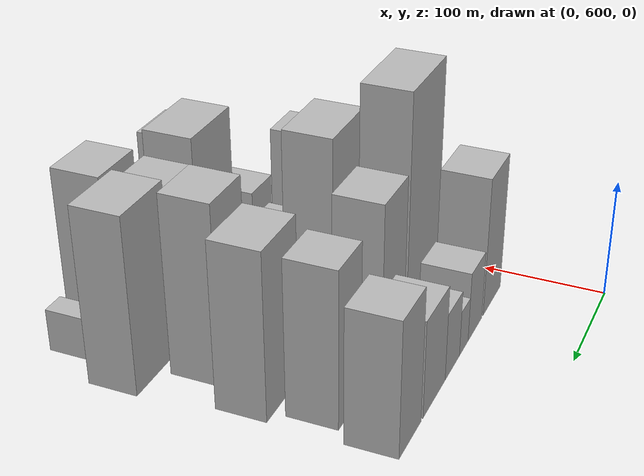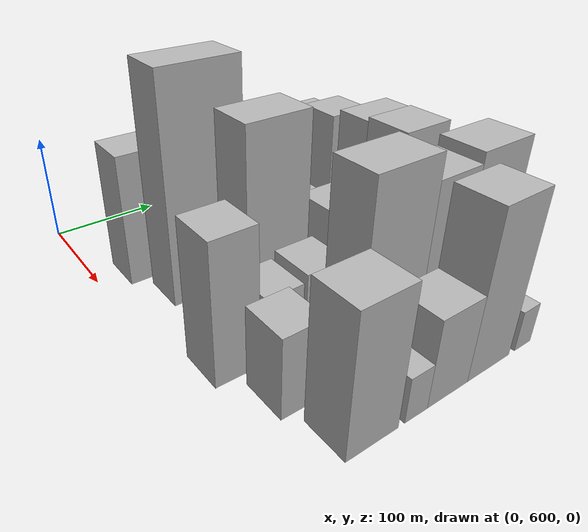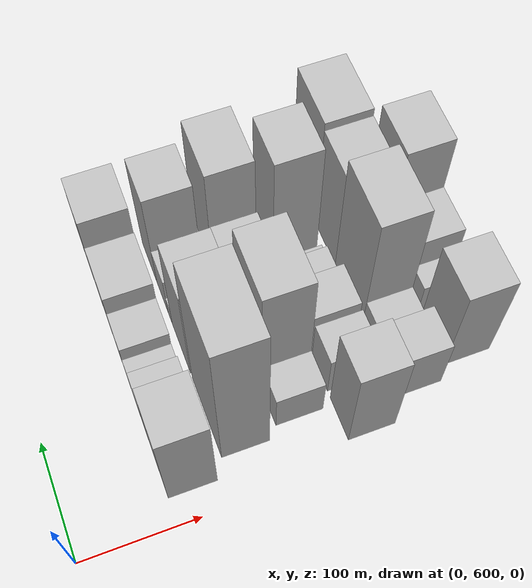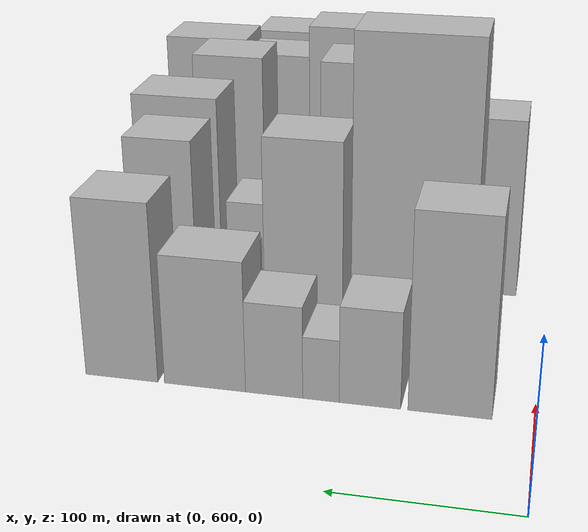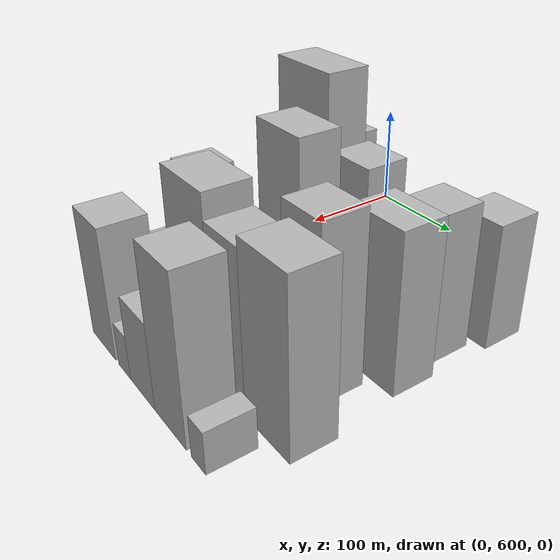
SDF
<sdf version="1.6">
 <world name="default">
  <model name="building_38">
   <static>1</static>
   <pose>100.0000 645.7755 0 0.000000 0.000000 0.000000</pose>
   <link name="link">
    <pose>0 0 60.00 0 0 0</pose>
    <collision name="collision"><geometry><box><size>40.0000 45.8273 120.0000</size></box></geometry></collision>
    <visual name="visual">
     <cast_shadows>0</cast_shadows>
     <geometry><box><size>40.0000 45.8273 120.0000</size></box></geometry>
     <material>
      <script>
       <uri>model://HANNAS_wall/materials/scripts</uri>
       <uri>model://HANNAS_wall/materials/textures</uri>
       <name>vrc/HANNAS_wall</name>
      </script>
     </material>
    </visual>
   </link>
  </model>
  <model name="building_39">
   <static>1</static>
   <pose>100.0000 689.8331 0 0.000000 0.000000 0.000000</pose>
   <link name="link">
    <pose>0 0 30.00 0 0 0</pose>
    <collision name="collision"><geometry><box><size>40.0000 34.2878 60.0000</size></box></geometry></collision>
    <visual name="visual">
     <cast_shadows>0</cast_shadows>
     <geometry><box><size>40.0000 34.2878 60.0000</size></box></geometry>
     <material>
      <script>
       <uri>model://HANNAS_wall/materials/scripts</uri>
       <uri>model://HANNAS_wall/materials/textures</uri>
       <name>vrc/HANNAS_wall</name>
      </script>
     </material>
    </visual>
   </link>
  </model>
  <model name="building_40">
   <static>1</static>
   <pose>100.0000 717.3259 0 0.000000 0.000000 0.000000</pose>
   <link name="link">
    <pose>0 0 19.50 0 0 0</pose>
    <collision name="collision"><geometry><box><size>40.0000 20.6979 39.0000</size></box></geometry></collision>
    <visual name="visual">
     <cast_shadows>0</cast_shadows>
     <geometry><box><size>40.0000 20.6979 39.0000</size></box></geometry>
     <material>
      <script>
       <uri>model://HANNAS_wall/materials/scripts</uri>
       <uri>model://HANNAS_wall/materials/textures</uri>
       <name>vrc/HANNAS_wall</name>
      </script>
     </material>
    </visual>
   </link>
  </model>
  <model name="building_41">
   <static>1</static>
   <pose>100.0000 744.1089 0 0.000000 0.000000 0.000000</pose>
   <link name="link">
    <pose>0 0 28.50 0 0 0</pose>
    <collision name="collision"><geometry><box><size>40.0000 32.8681 57.0000</size></box></geometry></collision>
    <visual name="visual">
     <cast_shadows>0</cast_shadows>
     <geometry><box><size>40.0000 32.8681 57.0000</size></box></geometry>
     <material>
      <script>
       <uri>model://HANNAS_wall/materials/scripts</uri>
       <uri>model://HANNAS_wall/materials/textures</uri>
       <name>vrc/HANNAS_wall</name>
      </script>
     </material>
    </visual>
   </link>
  </model>
  <model name="building_42">
   <static>1</static>
   <pose>100.0000 784.3606 0 0.000000 0.000000 0.000000</pose>
   <link name="link">
    <pose>0 0 40.50 0 0 0</pose>
    <collision name="collision"><geometry><box><size>40.0000 47.6351 81.0000</size></box></geometry></collision>
    <visual name="visual">
     <cast_shadows>0</cast_shadows>
     <geometry><box><size>40.0000 47.6351 81.0000</size></box></geometry>
     <material>
      <script>
       <uri>model://HANNAS_wall/materials/scripts</uri>
       <uri>model://HANNAS_wall/materials/textures</uri>
       <name>vrc/HANNAS_wall</name>
      </script>
     </material>
    </visual>
   </link>
  </model>
  <model name="building_43">
   <static>1</static>
   <pose>100.0000 833.8512 0 0.000000 0.000000 0.000000</pose>
   <link name="link">
    <pose>0 0 55.50 0 0 0</pose>
    <collision name="collision"><geometry><box><size>40.0000 43.3461 111.0000</size></box></geometry></collision>
    <visual name="visual">
     <cast_shadows>0</cast_shadows>
     <geometry><box><size>40.0000 43.3461 111.0000</size></box></geometry>
     <material>
      <script>
       <uri>model://HANNAS_wall/materials/scripts</uri>
       <uri>model://HANNAS_wall/materials/textures</uri>
       <name>vrc/HANNAS_wall</name>
      </script>
     </material>
    </visual>
   </link>
  </model>
  <model name="building_79">
   <static>1</static>
   <pose>149.0000 674.2326 0 0.000000 0.000000 0.000000</pose>
   <link name="link">
    <pose>0 0 99.00 0 0 0</pose>
    <collision name="collision"><geometry><box><size>40.0000 70.5329 198.0000</size></box></geometry></collision>
    <visual name="visual">
     <cast_shadows>0</cast_shadows>
     <geometry><box><size>40.0000 70.5329 198.0000</size></box></geometry>
     <material>
      <script>
       <uri>model://HANNAS_wall/materials/scripts</uri>
       <uri>model://HANNAS_wall/materials/textures</uri>
       <name>vrc/HANNAS_wall</name>
      </script>
     </material>
    </visual>
   </link>
  </model>
  <model name="building_80">
   <static>1</static>
   <pose>149.0000 737.7973 0 0.000000 0.000000 0.000000</pose>
   <link name="link">
    <pose>0 0 67.50 0 0 0</pose>
    <collision name="collision"><geometry><box><size>40.0000 46.5965 135.0000</size></box></geometry></collision>
    <visual name="visual">
     <cast_shadows>0</cast_shadows>
     <geometry><box><size>40.0000 46.5965 135.0000</size></box></geometry>
     <material>
      <script>
       <uri>model://HANNAS_wall/materials/scripts</uri>
       <uri>model://HANNAS_wall/materials/textures</uri>
       <name>vrc/HANNAS_wall</name>
      </script>
     </material>
    </visual>
   </link>
  </model>
  <model name="building_81">
   <static>1</static>
   <pose>149.0000 766.7592 0 0.000000 0.000000 0.000000</pose>
   <link name="link">
    <pose>0 0 13.50 0 0 0</pose>
    <collision name="collision"><geometry><box><size>40.0000 11.3273 27.0000</size></box></geometry></collision>
    <visual name="visual">
     <cast_shadows>0</cast_shadows>
     <geometry><box><size>40.0000 11.3273 27.0000</size></box></geometry>
     <material>
      <script>
       <uri>model://HANNAS_wall/materials/scripts</uri>
       <uri>model://HANNAS_wall/materials/textures</uri>
       <name>vrc/HANNAS_wall</name>
      </script>
     </material>
    </visual>
   </link>
  </model>
  <model name="building_82">
   <static>1</static>
   <pose>149.0000 787.4357 0 0.000000 0.000000 0.000000</pose>
   <link name="link">
    <pose>0 0 27.00 0 0 0</pose>
    <collision name="collision"><geometry><box><size>40.0000 30.0258 54.0000</size></box></geometry></collision>
    <visual name="visual">
     <cast_shadows>0</cast_shadows>
     <geometry><box><size>40.0000 30.0258 54.0000</size></box></geometry>
     <material>
      <script>
       <uri>model://HANNAS_wall/materials/scripts</uri>
       <uri>model://HANNAS_wall/materials/textures</uri>
       <name>vrc/HANNAS_wall</name>
      </script>
     </material>
    </visual>
   </link>
  </model>
  <model name="building_83">
   <static>1</static>
   <pose>149.0000 822.7872 0 0.000000 0.000000 0.000000</pose>
   <link name="link">
    <pose>0 0 64.50 0 0 0</pose>
    <collision name="collision"><geometry><box><size>40.0000 40.6771 129.0000</size></box></geometry></collision>
    <visual name="visual">
     <cast_shadows>0</cast_shadows>
     <geometry><box><size>40.0000 40.6771 129.0000</size></box></geometry>
     <material>
      <script>
       <uri>model://HANNAS_wall/materials/scripts</uri>
       <uri>model://HANNAS_wall/materials/textures</uri>
       <name>vrc/HANNAS_wall</name>
      </script>
     </material>
    </visual>
   </link>
  </model>
  <model name="building_119">
   <static>1</static>
   <pose>198.0000 663.8407 0 0.000000 0.000000 0.000000</pose>
   <link name="link">
    <pose>0 0 25.50 0 0 0</pose>
    <collision name="collision"><geometry><box><size>40.0000 30.0995 51.0000</size></box></geometry></collision>
    <visual name="visual">
     <cast_shadows>0</cast_shadows>
     <geometry><box><size>40.0000 30.0995 51.0000</size></box></geometry>
     <material>
      <script>
       <uri>model://HANNAS_wall/materials/scripts</uri>
       <uri>model://HANNAS_wall/materials/textures</uri>
       <name>vrc/HANNAS_wall</name>
      </script>
     </material>
    </visual>
   </link>
  </model>
  <model name="building_120">
   <static>1</static>
   <pose>198.0000 708.1974 0 0.000000 0.000000 0.000000</pose>
   <link name="link">
    <pose>0 0 82.50 0 0 0</pose>
    <collision name="collision"><geometry><box><size>40.0000 58.6139 165.0000</size></box></geometry></collision>
    <visual name="visual">
     <cast_shadows>0</cast_shadows>
     <geometry><box><size>40.0000 58.6139 165.0000</size></box></geometry>
     <material>
      <script>
       <uri>model://HANNAS_wall/materials/scripts</uri>
       <uri>model://HANNAS_wall/materials/textures</uri>
       <name>vrc/HANNAS_wall</name>
      </script>
     </material>
    </visual>
   </link>
  </model>
  <model name="building_121">
   <static>1</static>
   <pose>198.0000 752.1371 0 0.000000 0.000000 0.000000</pose>
   <link name="link">
    <pose>0 0 16.50 0 0 0</pose>
    <collision name="collision"><geometry><box><size>40.0000 17.2655 33.0000</size></box></geometry></collision>
    <visual name="visual">
     <cast_shadows>0</cast_shadows>
     <geometry><box><size>40.0000 17.2655 33.0000</size></box></geometry>
     <material>
      <script>
       <uri>model://HANNAS_wall/materials/scripts</uri>
       <uri>model://HANNAS_wall/materials/textures</uri>
       <name>vrc/HANNAS_wall</name>
      </script>
     </material>
    </visual>
   </link>
  </model>
  <model name="building_122">
   <static>1</static>
   <pose>198.0000 778.9814 0 0.000000 0.000000 0.000000</pose>
   <link name="link">
    <pose>0 0 36.00 0 0 0</pose>
    <collision name="collision"><geometry><box><size>40.0000 36.4230 72.0000</size></box></geometry></collision>
    <visual name="visual">
     <cast_shadows>0</cast_shadows>
     <geometry><box><size>40.0000 36.4230 72.0000</size></box></geometry>
     <material>
      <script>
       <uri>model://HANNAS_wall/materials/scripts</uri>
       <uri>model://HANNAS_wall/materials/textures</uri>
       <name>vrc/HANNAS_wall</name>
      </script>
     </material>
    </visual>
   </link>
  </model>
  <model name="building_123">
   <static>1</static>
   <pose>198.0000 827.9571 0 0.000000 0.000000 0.000000</pose>
   <link name="link">
    <pose>0 0 69.00 0 0 0</pose>
    <collision name="collision"><geometry><box><size>40.0000 53.5285 138.0000</size></box></geometry></collision>
    <visual name="visual">
     <cast_shadows>0</cast_shadows>
     <geometry><box><size>40.0000 53.5285 138.0000</size></box></geometry>
     <material>
      <script>
       <uri>model://HANNAS_wall/materials/scripts</uri>
       <uri>model://HANNAS_wall/materials/textures</uri>
       <name>vrc/HANNAS_wall</name>
      </script>
     </material>
    </visual>
   </link>
  </model>
  <model name="building_160">
   <static>1</static>
   <pose>247.0000 636.5103 0 0.000000 0.000000 0.000000</pose>
   <link name="link">
    <pose>0 0 60.00 0 0 0</pose>
    <collision name="collision"><geometry><box><size>40.0000 37.8632 120.0000</size></box></geometry></collision>
    <visual name="visual">
     <cast_shadows>0</cast_shadows>
     <geometry><box><size>40.0000 37.8632 120.0000</size></box></geometry>
     <material>
      <script>
       <uri>model://HANNAS_wall/materials/scripts</uri>
       <uri>model://HANNAS_wall/materials/textures</uri>
       <name>vrc/HANNAS_wall</name>
      </script>
     </material>
    </visual>
   </link>
  </model>
  <model name="building_161">
   <static>1</static>
   <pose>247.0000 678.0070 0 0.000000 0.000000 0.000000</pose>
   <link name="link">
    <pose>0 0 28.50 0 0 0</pose>
    <collision name="collision"><geometry><box><size>40.0000 33.1301 57.0000</size></box></geometry></collision>
    <visual name="visual">
     <cast_shadows>0</cast_shadows>
     <geometry><box><size>40.0000 33.1301 57.0000</size></box></geometry>
     <material>
      <script>
       <uri>model://HANNAS_wall/materials/scripts</uri>
       <uri>model://HANNAS_wall/materials/textures</uri>
       <name>vrc/HANNAS_wall</name>
      </script>
     </material>
    </visual>
   </link>
  </model>
  <model name="building_162">
   <static>1</static>
   <pose>247.0000 715.9243 0 0.000000 0.000000 0.000000</pose>
   <link name="link">
    <pose>0 0 31.50 0 0 0</pose>
    <collision name="collision"><geometry><box><size>40.0000 36.7045 63.0000</size></box></geometry></collision>
    <visual name="visual">
     <cast_shadows>0</cast_shadows>
     <geometry><box><size>40.0000 36.7045 63.0000</size></box></geometry>
     <material>
      <script>
       <uri>model://HANNAS_wall/materials/scripts</uri>
       <uri>model://HANNAS_wall/materials/textures</uri>
       <name>vrc/HANNAS_wall</name>
      </script>
     </material>
    </visual>
   </link>
  </model>
  <model name="building_163">
   <static>1</static>
   <pose>247.0000 754.4757 0 0.000000 0.000000 0.000000</pose>
   <link name="link">
    <pose>0 0 19.50 0 0 0</pose>
    <collision name="collision"><geometry><box><size>40.0000 22.3983 39.0000</size></box></geometry></collision>
    <visual name="visual">
     <cast_shadows>0</cast_shadows>
     <geometry><box><size>40.0000 22.3983 39.0000</size></box></geometry>
     <material>
      <script>
       <uri>model://HANNAS_wall/materials/scripts</uri>
       <uri>model://HANNAS_wall/materials/textures</uri>
       <name>vrc/HANNAS_wall</name>
      </script>
     </material>
    </visual>
   </link>
  </model>
  <model name="building_164">
   <static>1</static>
   <pose>247.0000 770.8162 0 0.000000 0.000000 0.000000</pose>
   <link name="link">
    <pose>0 0 12.00 0 0 0</pose>
    <collision name="collision"><geometry><box><size>40.0000 10.2827 24.0000</size></box></geometry></collision>
    <visual name="visual">
     <cast_shadows>0</cast_shadows>
     <geometry><box><size>40.0000 10.2827 24.0000</size></box></geometry>
     <material>
      <script>
       <uri>model://HANNAS_wall/materials/scripts</uri>
       <uri>model://HANNAS_wall/materials/textures</uri>
       <name>vrc/HANNAS_wall</name>
      </script>
     </material>
    </visual>
   </link>
  </model>
  <model name="building_165">
   <static>1</static>
   <pose>247.0000 807.7834 0 0.000000 0.000000 0.000000</pose>
   <link name="link">
    <pose>0 0 75.00 0 0 0</pose>
    <collision name="collision"><geometry><box><size>40.0000 45.6516 150.0000</size></box></geometry></collision>
    <visual name="visual">
     <cast_shadows>0</cast_shadows>
     <geometry><box><size>40.0000 45.6516 150.0000</size></box></geometry>
     <material>
      <script>
       <uri>model://HANNAS_wall/materials/scripts</uri>
       <uri>model://HANNAS_wall/materials/textures</uri>
       <name>vrc/HANNAS_wall</name>
      </script>
     </material>
    </visual>
   </link>
  </model>
  <model name="building_206">
   <static>1</static>
   <pose>296.0000 655.5617 0 0.000000 0.000000 0.000000</pose>
   <link name="link">
    <pose>0 0 34.50 0 0 0</pose>
    <collision name="collision"><geometry><box><size>40.0000 35.9437 69.0000</size></box></geometry></collision>
    <visual name="visual">
     <cast_shadows>0</cast_shadows>
     <geometry><box><size>40.0000 35.9437 69.0000</size></box></geometry>
     <material>
      <script>
       <uri>model://HANNAS_wall/materials/scripts</uri>
       <uri>model://HANNAS_wall/materials/textures</uri>
       <name>vrc/HANNAS_wall</name>
      </script>
     </material>
    </visual>
   </link>
  </model>
  <model name="building_207">
   <static>1</static>
   <pose>296.0000 693.0144 0 0.000000 0.000000 0.000000</pose>
   <link name="link">
    <pose>0 0 21.00 0 0 0</pose>
    <collision name="collision"><geometry><box><size>40.0000 24.9617 42.0000</size></box></geometry></collision>
    <visual name="visual">
     <cast_shadows>0</cast_shadows>
     <geometry><box><size>40.0000 24.9617 42.0000</size></box></geometry>
     <material>
      <script>
       <uri>model://HANNAS_wall/materials/scripts</uri>
       <uri>model://HANNAS_wall/materials/textures</uri>
       <name>vrc/HANNAS_wall</name>
      </script>
     </material>
    </visual>
   </link>
  </model>
  <model name="building_208">
   <static>1</static>
   <pose>296.0000 735.2475 0 0.000000 0.000000 0.000000</pose>
   <link name="link">
    <pose>0 0 79.50 0 0 0</pose>
    <collision name="collision"><geometry><box><size>40.0000 59.5045 159.0000</size></box></geometry></collision>
    <visual name="visual">
     <cast_shadows>0</cast_shadows>
     <geometry><box><size>40.0000 59.5045 159.0000</size></box></geometry>
     <material>
      <script>
       <uri>model://HANNAS_wall/materials/scripts</uri>
       <uri>model://HANNAS_wall/materials/textures</uri>
       <name>vrc/HANNAS_wall</name>
      </script>
     </material>
    </visual>
   </link>
  </model>
  <model name="building_209">
   <static>1</static>
   <pose>296.0000 786.6087 0 0.000000 0.000000 0.000000</pose>
   <link name="link">
    <pose>0 0 69.00 0 0 0</pose>
    <collision name="collision"><geometry><box><size>40.0000 43.2178 138.0000</size></box></geometry></collision>
    <visual name="visual">
     <cast_shadows>0</cast_shadows>
     <geometry><box><size>40.0000 43.2178 138.0000</size></box></geometry>
     <material>
      <script>
       <uri>model://HANNAS_wall/materials/scripts</uri>
       <uri>model://HANNAS_wall/materials/textures</uri>
       <name>vrc/HANNAS_wall</name>
      </script>
     </material>
    </visual>
   </link>
  </model>
  <model name="building_210">
   <static>1</static>
   <pose>296.0000 835.9709 0 0.000000 0.000000 0.000000</pose>
   <link name="link">
    <pose>0 0 73.50 0 0 0</pose>
    <collision name="collision"><geometry><box><size>40.0000 55.5067 147.0000</size></box></geometry></collision>
    <visual name="visual">
     <cast_shadows>0</cast_shadows>
     <geometry><box><size>40.0000 55.5067 147.0000</size></box></geometry>
     <material>
      <script>
       <uri>model://HANNAS_wall/materials/scripts</uri>
       <uri>model://HANNAS_wall/materials/textures</uri>
       <name>vrc/HANNAS_wall</name>
      </script>
     </material>
    </visual>
   </link>
  </model>
  <model name="building_248">
   <static>1</static>
   <pose>345.0000 672.6186 0 0.000000 0.000000 0.000000</pose>
   <link name="link">
    <pose>0 0 58.50 0 0 0</pose>
    <collision name="collision"><geometry><box><size>40.0000 45.9368 117.0000</size></box></geometry></collision>
    <visual name="visual">
     <cast_shadows>0</cast_shadows>
     <geometry><box><size>40.0000 45.9368 117.0000</size></box></geometry>
     <material>
      <script>
       <uri>model://HANNAS_wall/materials/scripts</uri>
       <uri>model://HANNAS_wall/materials/textures</uri>
       <name>vrc/HANNAS_wall</name>
      </script>
     </material>
    </visual>
   </link>
  </model>
  <model name="building_249">
   <static>1</static>
   <pose>345.0000 712.4636 0 0.000000 0.000000 0.000000</pose>
   <link name="link">
    <pose>0 0 19.50 0 0 0</pose>
    <collision name="collision"><geometry><box><size>40.0000 21.7531 39.0000</size></box></geometry></collision>
    <visual name="visual">
     <cast_shadows>0</cast_shadows>
     <geometry><box><size>40.0000 21.7531 39.0000</size></box></geometry>
     <material>
      <script>
       <uri>model://HANNAS_wall/materials/scripts</uri>
       <uri>model://HANNAS_wall/materials/textures</uri>
       <name>vrc/HANNAS_wall</name>
      </script>
     </material>
    </visual>
   </link>
  </model>
  <model name="building_250">
   <static>1</static>
   <pose>345.0000 744.1806 0 0.000000 0.000000 0.000000</pose>
   <link name="link">
    <pose>0 0 37.50 0 0 0</pose>
    <collision name="collision"><geometry><box><size>40.0000 41.6809 75.0000</size></box></geometry></collision>
    <visual name="visual">
     <cast_shadows>0</cast_shadows>
     <geometry><box><size>40.0000 41.6809 75.0000</size></box></geometry>
     <material>
      <script>
       <uri>model://HANNAS_wall/materials/scripts</uri>
       <uri>model://HANNAS_wall/materials/textures</uri>
       <name>vrc/HANNAS_wall</name>
      </script>
     </material>
    </visual>
   </link>
  </model>
  <model name="building_251">
   <static>1</static>
   <pose>345.0000 788.9062 0 0.000000 0.000000 0.000000</pose>
   <link name="link">
    <pose>0 0 70.50 0 0 0</pose>
    <collision name="collision"><geometry><box><size>40.0000 47.7702 141.0000</size></box></geometry></collision>
    <visual name="visual">
     <cast_shadows>0</cast_shadows>
     <geometry><box><size>40.0000 47.7702 141.0000</size></box></geometry>
     <material>
      <script>
       <uri>model://HANNAS_wall/materials/scripts</uri>
       <uri>model://HANNAS_wall/materials/textures</uri>
       <name>vrc/HANNAS_wall</name>
      </script>
     </material>
    </visual>
   </link>
  </model>
  <model name="building_252">
   <static>1</static>
   <pose>345.0000 829.6175 0 0.000000 0.000000 0.000000</pose>
   <link name="link">
    <pose>0 0 18.00 0 0 0</pose>
    <collision name="collision"><geometry><box><size>40.0000 19.6525 36.0000</size></box></geometry></collision>
    <visual name="visual">
     <cast_shadows>0</cast_shadows>
     <geometry><box><size>40.0000 19.6525 36.0000</size></box></geometry>
     <material>
      <script>
       <uri>model://HANNAS_wall/materials/scripts</uri>
       <uri>model://HANNAS_wall/materials/textures</uri>
       <name>vrc/HANNAS_wall</name>
      </script>
     </material>
    </visual>
   </link>
  </model>
 </world>
</sdf>
